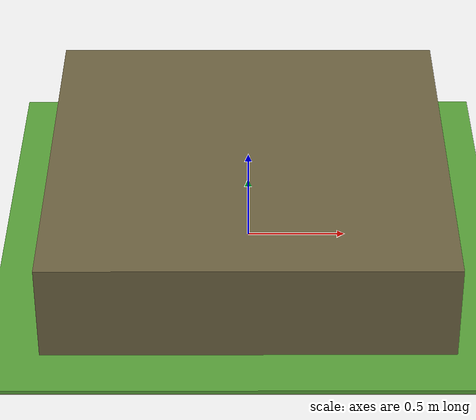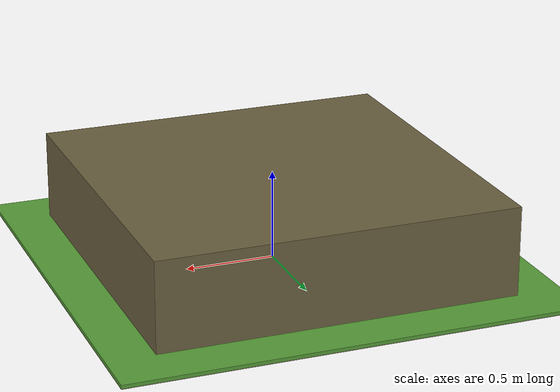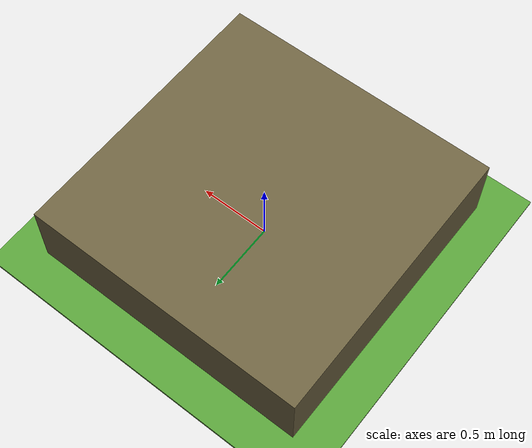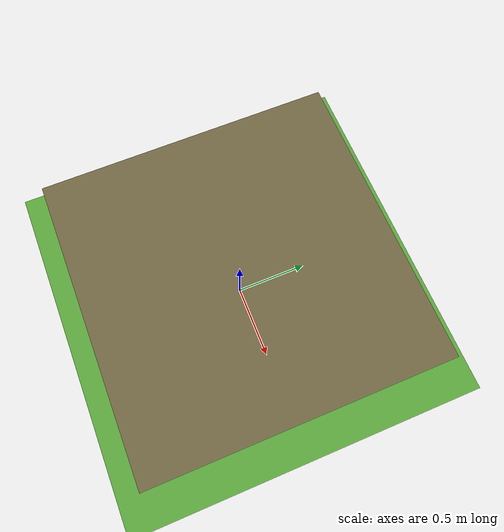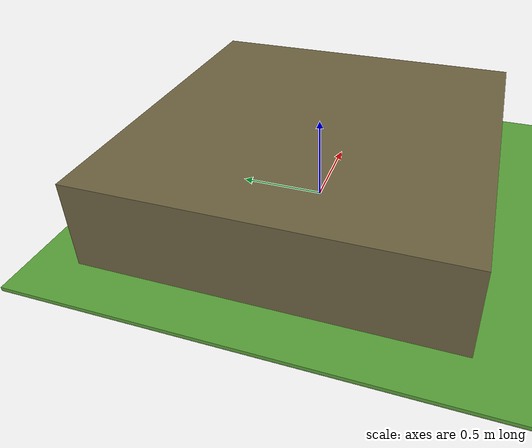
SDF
<?xml version="1.0" encoding="UTF-8"?>
<!-- Generated by tools/veri/dunya_uret.py -- do not edit; re-run the generator.
     10x10 m kare ada, ortasinda 2x2 m inilemez nesne -->
<sdf version="1.9">
  <world name="veri_w8_r2p5">
    <physics type="ode">
      <max_step_size>0.004</max_step_size>
      <real_time_factor>1.0</real_time_factor>
      <real_time_update_rate>250</real_time_update_rate>
    </physics>
    <gravity>0 0 -9.8</gravity>
    <magnetic_field>6e-06 2.3e-05 -4.2e-05</magnetic_field>
    <atmosphere type="adiabatic"/>
    <scene>
      <grid>false</grid>
      <ambient>0.4 0.4 0.4 1</ambient>
      <background>0.7 0.7 0.7 1</background>
      <shadows>true</shadows>
    </scene>
    <plugin filename="gz-sim-physics-system" name="gz::sim::systems::Physics"/>
    <plugin filename="gz-sim-user-commands-system" name="gz::sim::systems::UserCommands"/>
    <plugin filename="gz-sim-scene-broadcaster-system" name="gz::sim::systems::SceneBroadcaster"/>
    <plugin filename="gz-sim-contact-system" name="gz::sim::systems::Contact"/>
    <plugin filename="gz-sim-imu-system" name="gz::sim::systems::Imu"/>
    <plugin filename="gz-sim-air-pressure-system" name="gz::sim::systems::AirPressure"/>
    <plugin filename="gz-sim-air-speed-system" name="gz::sim::systems::AirSpeed"/>
    <plugin filename="gz-sim-apply-link-wrench-system" name="gz::sim::systems::ApplyLinkWrench"/>
    <plugin filename="gz-sim-navsat-system" name="gz::sim::systems::NavSat"/>
    <plugin filename="gz-sim-magnetometer-system" name="gz::sim::systems::Magnetometer"/>
    <plugin filename="gz-sim-sensors-system" name="gz::sim::systems::Sensors">
      <render_engine>ogre2</render_engine>
    </plugin>
    <plugin filename="libOpticalFlowSystem.so" name="custom::OpticalFlowSystem"/>
    <plugin filename="libGstCameraSystem.so" name="custom::GstCameraSystem"/>
    <plugin filename="gz-sim-wind-effects-system" name="gz::sim::systems::WindEffects">
      <!-- effective scale 0.075: gz squares this value -->
      <force_approximation_scaling_factor>0.2739</force_approximation_scaling_factor>
    </plugin>

    <model name="ground_plane">
      <static>true</static>
      <link name="link">
        <collision name="collision">
          <geometry><plane><normal>0 0 1</normal><size>1 1</size></plane></geometry>
          <surface><friction><ode/></friction><bounce/><contact/></surface>
        </collision>
        <visual name="visual">
          <geometry><plane><normal>0 0 1</normal><size>500 500</size></plane></geometry>
          <material><ambient>0.33 0.30 0.20 1</ambient><diffuse>0.42 0.38 0.25 1</diffuse>
            <specular>0.05 0.05 0.05 1</specular></material>
        </visual>
      </link>
      <plugin filename="gz-sim-label-system" name="gz::sim::systems::Label">
        <label>3</label>
      </plugin>
    </model>
    <model name="ada_0">
      <static>true</static>
      <pose>0.000 0.000 0.010 0 0 0</pose>
      <link name="link">
        <collision name="collision"><geometry><box><size>10.000 10.000 0.020</size></box></geometry></collision>
        <visual name="visual"><geometry><box><size>10.000 10.000 0.020</size></box></geometry>
          <material><ambient>0.28 0.52 0.18 1</ambient><diffuse>0.34 0.62 0.22 1</diffuse></material></visual>
      </link>
      <plugin filename="gz-sim-label-system" name="gz::sim::systems::Label"><label>1</label></plugin>
    </model>
    <model name="sinif_siniri_nesnesi">
      <static>true</static>
      <pose>0.000 0.000 0.270 0 0 0</pose>
      <link name="link">
        <collision name="collision"><geometry><box><size>2.000 2.000 0.500</size></box></geometry></collision>
        <visual name="visual"><geometry><box><size>2.000 2.000 0.500</size></box></geometry>
          <material><ambient>0.33 0.30 0.20 1</ambient><diffuse>0.42 0.38 0.25 1</diffuse></material></visual>
      </link>
      <plugin filename="gz-sim-label-system" name="gz::sim::systems::Label"><label>3</label></plugin>
    </model>

    <light name="sunUTC" type="directional">
      <pose>0 0 500 0 -0 0</pose>
      <cast_shadows>true</cast_shadows>
      <intensity>1</intensity>
      <direction>0.001 0.625 -0.78</direction>
      <diffuse>0.904 0.904 0.904 1</diffuse>
      <specular>0.271 0.271 0.271 1</specular>
      <attenuation><range>2000</range><linear>0</linear><constant>1</constant>
        <quadratic>0</quadratic></attenuation>
      <spot><inner_angle>0</inner_angle><outer_angle>0</outer_angle><falloff>0</falloff></spot>
    </light>
    <wind>
      <linear_velocity>1.768 1.768 0</linear_velocity>
    </wind>
    <spherical_coordinates>
      <surface_model>EARTH_WGS84</surface_model>
      <world_frame_orientation>ENU</world_frame_orientation>
      <latitude_deg>47.397971057728974</latitude_deg>
      <longitude_deg> 8.546163739800146</longitude_deg>
      <elevation>0</elevation>
    </spherical_coordinates>
  </world>
</sdf>
